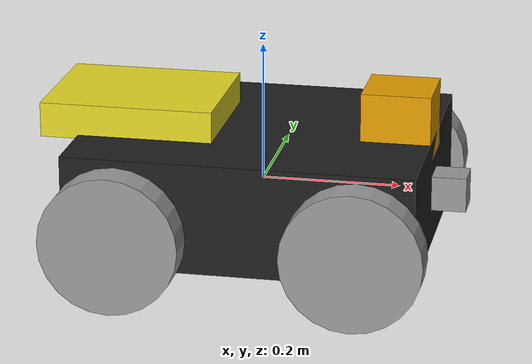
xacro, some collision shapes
<?xml version='1.0'?>

<robot name="my_robot" xmlns:xacro="http://www.ros.org/wiki/xacro">

<xacro:include filename="$(find my_robot)/urdf/my_robot.gazebo" />

  <link name="robot_footprint"></link>

  <joint name="robot_footprint_joint" type="fixed">
    <origin xyz="0 0 0" rpy="0 0 0" />
    <parent link="robot_footprint"/>
    <child link="chassis" />
  </joint>

  <link name='chassis'>
    <pose>0 0 0.1 0 0 0</pose>

    <inertial>
      <mass value="15.0"/>
      <origin xyz="0.0 0 0" rpy=" 0 0 0"/>
      <inertia
          ixx="0.1" ixy="0" ixz="0"
          iyy="0.1" iyz="0"
          izz="0.1"
      />
    </inertial>

    <collision name='collision'>
      <origin xyz="0 0 0" rpy=" 0 0 0"/>
      <geometry>
        <box size=".5 .4 .16"/>
      </geometry>
    </collision>

    <visual name='chassis_visual'>
      <origin xyz="0 0 0" rpy=" 0 0 0"/>
      <geometry>
        <box size=".5 .4 .16"/>
      </geometry>
    </visual>
  </link>

  <link name='hat'>
    <pose>0 0 0.1 0 0 0</pose>

    <inertial>
      <mass value="15.0"/>
      <origin xyz="0.0 0 0" rpy=" 0 0 0"/>
      <inertia
          ixx="0.1" ixy="0" ixz="0"
          iyy="0.1" iyz="0"
          izz="0.1"
      />
    </inertial>

    <collision name='hat_collision'>
      <origin xyz="0 0 0" rpy=" 0 0 0"/>
      <geometry>
        <box size=".25 .2 .05"/>
      </geometry>
    </collision>

    <visual name='hat_visual'>
      <origin xyz="0 0 0" rpy=" 0 0 0"/>
      <geometry>
        <box size=".25 .2 .05"/>
      </geometry>
    </visual>
  </link>

  <joint type="fixed" name="hat_joint">
    <axis x="0" y="1" z="0"/>
    <origin xyz="-0.18 0 0.1" rpy="0 0 0"/>
    <child link="hat"/>
    <parent link="chassis"/>
  </joint>

 <link name="f_left_wheel">
    <pose>0 0 0.1 0 0 0</pose>
    <inertial>
      <origin xyz="0 0 0" rpy="0 1.5707 1.5707"/>
      <mass value="5"/>
      <inertia
          ixx="0.1" ixy="0" ixz="0"
          iyy="0.1" iyz="0"
          izz="0.1"
      />
    </inertial>

    <collision name='f_left_wheel_collision'>
     <origin xyz="0 0 0" rpy="0 1.5707 1.5707"/>
      <geometry>
       <cylinder radius="0.1" length="0.05"/>
      </geometry>
    </collision>

    <visual name='f_left_wheel_visual'>
     <origin xyz="0 0 0" rpy="0 1.5707 1.5707"/>
     <geometry>
      <cylinder radius="0.1" length="0.05"/>
     </geometry>
    </visual>

</link>

  <joint type="continuous" name="f_left_wheel_hinge">
    <origin xyz="0.17 0.23 -0.029" rpy="0 0 0"/>
    <child link="f_left_wheel"/>
    <parent link="chassis"/>
    <axis xyz="0 1 0" rpy="0 0 0"/>
    <limit effort="10000" velocity="1000"/>
    <dynamics damping="1.0" friction="1.0"/>
  </joint>

 <link name="b_left_wheel">
    <pose>0 0 0.1 0 0 0</pose>
    <inertial>
      <origin xyz="0 0 0" rpy="0 1.5707 1.5707"/>
      <mass value="5"/>
      <inertia
          ixx="0.1" ixy="0" ixz="0"
          iyy="0.1" iyz="0"
          izz="0.1"
      />
    </inertial>

    <collision name='b_left_wheel_collision'>
     <origin xyz="0 0 0" rpy="0 1.5707 1.5707"/>
      <geometry>
       <cylinder radius="0.1" length="0.05"/>
      </geometry>
    </collision>

    <visual name='b_left_wheel_visual'>
     <origin xyz="0 0 0" rpy="0 1.5707 1.5707"/>
     <geometry>
      <cylinder radius="0.1" length="0.05"/>
     </geometry>
    </visual>

</link>

  <joint type="continuous" name="b_left_wheel_hinge">
    <origin xyz="-0.17 0.23 -0.029" rpy="0 0 0"/>
    <child link="b_left_wheel"/>
    <parent link="chassis"/>
    <axis xyz="0 1 0" rpy="0 0 0"/>
    <limit effort="10000" velocity="1000"/>
    <dynamics damping="1.0" friction="1.0"/>
  </joint>

 <link name="f_right_wheel">
    <inertial>
	<origin xyz="0 0 0" rpy="0 1.5707 1.5707"/>
	<mass value="5"/>
      <inertia
          ixx="0.1" ixy="0" ixz="0"
          iyy="0.1" iyz="0"
          izz="0.1"
      />
    </inertial>

    <collision name='f_right_wheel_collision'>
	<origin xyz="0 0 0" rpy="0 1.5707 1.5707"/>
        <geometry>
         <cylinder radius="0.1" length="0.05"/>
        </geometry>
    </collision>

    <visual name='f_right_wheel_visual'>
	<origin xyz="0 0 0" rpy="0 1.5707 1.5707"/>
        <geometry>
         <cylinder radius="0.1" length="0.05"/>
        </geometry>
    </visual>
</link>

  <joint type="continuous" name="f_right_wheel_hinge">
    <origin xyz="0.17 -0.23 -0.029" rpy="0 0 0"/>
    <child link="f_right_wheel"/>
    <parent link="chassis"/>
    <axis xyz="0 1 0" rpy="0 0 0"/>
    <limit effort="10000" velocity="1000"/>
    <dynamics damping="1.0" friction="1.0"/>
  </joint>

 <link name="b_right_wheel">
    <inertial>
	<origin xyz="0 0 0" rpy="0 1.5707 1.5707"/>
	<mass value="5"/>
      <inertia
          ixx="0.1" ixy="0" ixz="0"
          iyy="0.1" iyz="0"
          izz="0.1"
      />
    </inertial>

    <collision name='b_right_wheel_collision'>
	<origin xyz="0 0 0" rpy="0 1.5707 1.5707"/>
        <geometry>
         <cylinder radius="0.1" length="0.05"/>
        </geometry>
    </collision>

    <visual name='b_right_wheel_visual'>
	<origin xyz="0 0 0" rpy="0 1.5707 1.5707"/>
        <geometry>
         <cylinder radius="0.1" length="0.05"/>
        </geometry>
    </visual>
</link>

  <joint type="continuous" name="b_right_wheel_hinge">
    <origin xyz="-0.17 -0.23 -0.029" rpy="0 0 0"/>
    <child link="b_right_wheel"/>
    <parent link="chassis"/>
    <axis xyz="0 1 0" rpy="0 0 0"/>
    <limit effort="10000" velocity="1000"/>
    <dynamics damping="1.0" friction="1.0"/>
  </joint>

 <link name='camera'>

    <inertial>
	<origin xyz="0 0 0" rpy="0 0 0"/>
    	<mass value="0.1"/>
	<box_inertia
		m="0.1" x="0.05" y="0.05" z="0.05"
	/>
    	  <inertia
    	      ixx="1e-6" ixy="0" ixz="0"
    	      iyy="1e-6" iyz="0"
    	      izz="1e-6"
    	  />
    </inertial>

  <collision name='camera_collision'>
	<origin xyz="0 0 0" rpy="0 0 0"/>
    <geometry>
      <box size="0.05 0.05 0.05"/>
    </geometry>
  </collision>

  <visual name='camera_visual'>
	<origin xyz="0 0 0" rpy="0 0 0"/>
    <geometry>
      <box size="0.05 0.05 0.05"/>
    </geometry>
  </visual>
 </link>

  <joint name="camera_joint" type="fixed">
    <axis x="0" y="1" z="0"/>
    <origin xyz="0.275 0 0.0" rpy="0 0 0" />
    <parent link="chassis"/>
    <child link="camera" />
  </joint>

 <link name='hokuyo'>

    <inertial>
	<origin xyz="0 0 0" rpy="0 0 0"/>
    	<mass value="1e-6"/>
    	  <inertia
    	      ixx="1e-6" ixy="0" ixz="0"
    	      iyy="1e-6" iyz="0"
    	      izz="1e-6"
    	  />
    </inertial>

  <collision name='hokuyo_collision'>
	<origin xyz="0 0 0" rpy="0 0 0"/>
    <geometry>
      <box size="0.1 0.1 0.1"/>
    </geometry>
  </collision>

  <visual name='hokuyo_visual'>
	<origin xyz="0 0 0" rpy="0 0 0"/>
    <geometry>
      <mesh filename="package://my_robot/meshes/hokuyo.dae"/>
    </geometry>
  </visual>
 </link>

  <joint name="hokuyo_joint" type="fixed">
    <axis x="0" y="1" z="0"/>
    <origin xyz="0.2 0 0.1" rpy="0 0 0" />
    <parent link="chassis"/>
    <child link="hokuyo" />
  </joint>

</robot>
